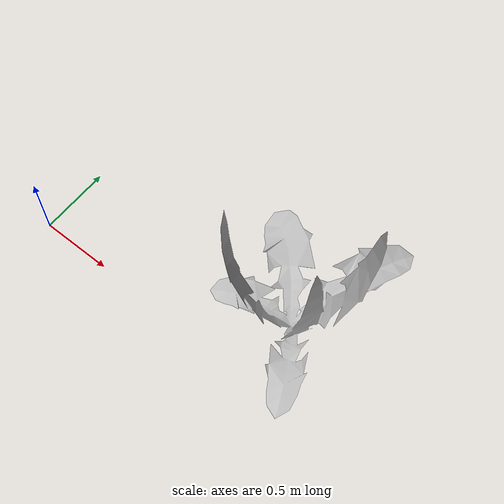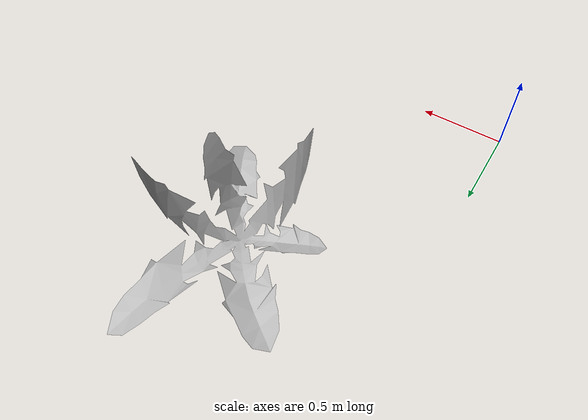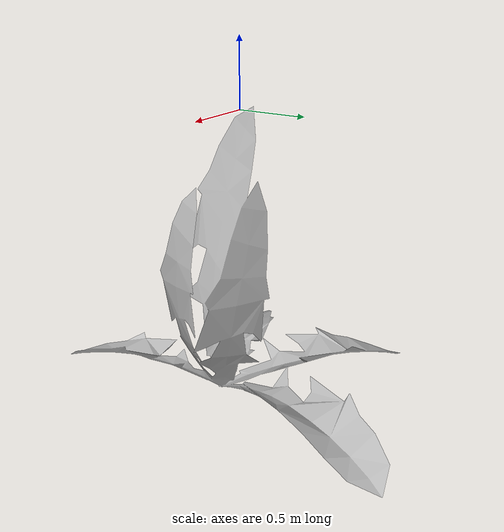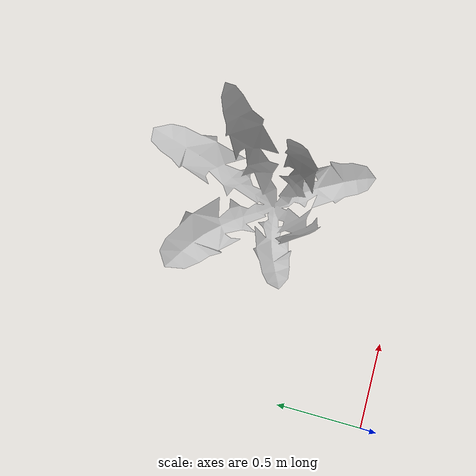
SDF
<?xml version="1.0"?>
<sdf version="1.6">
  <world name="sample_world">
    <!-- Define your world properties and settings here -->

    <model name="environment">
      <!-- Define your environment model properties here -->
    </model>

    <model name="your_model_name">
      <static>true</static>
      <link name="link">
        <collision name="collision">
          <geometry>
            <mesh>
              <uri>/config/Untitled/small_plant.dae</uri>
            </mesh>
          </geometry>
        </collision>
        <visual name="visual">
          <geometry>
            <mesh>
              <uri>/config/Untitled/small_plant.dae</uri>
            </mesh>
          </geometry>
        </visual>
      </link>
    </model>

  </world>
</sdf>
